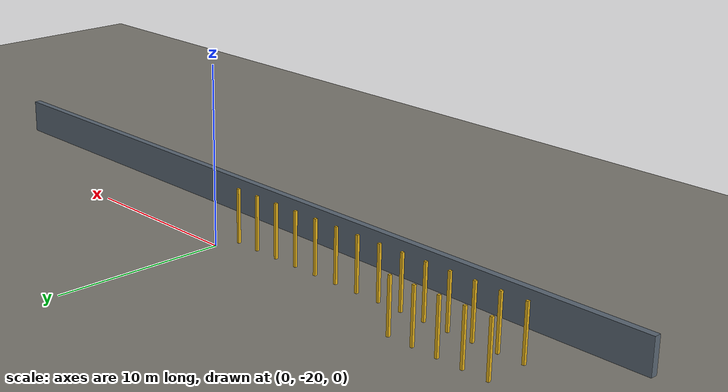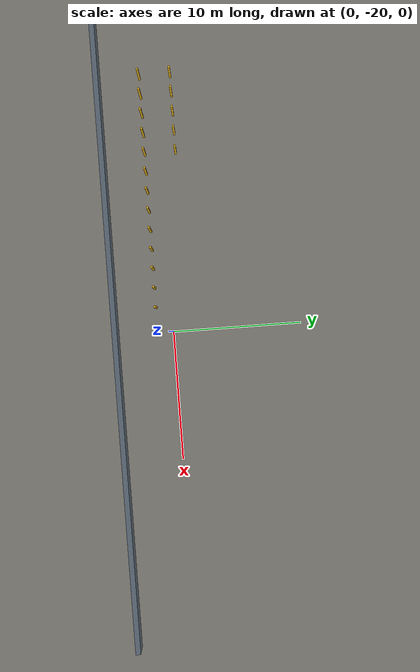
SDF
<sdf version="1.6">
 <world name="w4_structure_decks">
  <model name="ground_plane">
   <static>true</static>
   <link name="link">
    <collision name="collision">
     <geometry><plane><normal>0 0 1</normal><size>300.0 300.0</size></plane></geometry>
    </collision>
    <visual name="visual">
     <geometry><plane><normal>0 0 1</normal><size>300.0 300.0</size></plane></geometry>
     <material>
      <ambient>0.48 0.47 0.44 1</ambient>
      <diffuse>0.48 0.47 0.44 1</diffuse>
      <specular>0.05 0.05 0.05 1</specular>
     </material>
    </visual>
   </link>
  </model>
  <model name="fence_S0">
   <static>true</static>
   <pose>0.0000 -24.5000 1.0000 0 0 0.00000</pose>
   <link name="link">
    <collision name="c"><geometry><box><size>49.0000 0.4000 2.0000</size></box></geometry></collision>
    <visual name="v">
     <geometry><box><size>49.0000 0.4000 2.0000</size></box></geometry>
     <material>
      <ambient>0.350 0.400 0.450 1</ambient>
      <diffuse>0.350 0.400 0.450 1</diffuse>
      <specular>0.1 0.1 0.1 1</specular>
     </material>
    </visual>
   </link>
  </model>
  <model name="post_0_0">
   <static>true</static>
   <pose>-20.0000 -18.8000 1.5500 0 0 0.00000</pose>
   <link name="link">
    <collision name="c"><geometry><box><size>0.1500 0.1500 3.1000</size></box></geometry></collision>
    <visual name="v">
     <geometry><box><size>0.1500 0.1500 3.1000</size></box></geometry>
     <material>
      <ambient>0.900 0.700 0.100 1</ambient>
      <diffuse>0.900 0.700 0.100 1</diffuse>
      <specular>0.1 0.1 0.1 1</specular>
     </material>
    </visual>
   </link>
  </model>
  <model name="post_0_1">
   <static>true</static>
   <pose>-20.0000 -21.2000 1.5500 0 0 0.00000</pose>
   <link name="link">
    <collision name="c"><geometry><box><size>0.1500 0.1500 3.1000</size></box></geometry></collision>
    <visual name="v">
     <geometry><box><size>0.1500 0.1500 3.1000</size></box></geometry>
     <material>
      <ambient>0.900 0.700 0.100 1</ambient>
      <diffuse>0.900 0.700 0.100 1</diffuse>
      <specular>0.1 0.1 0.1 1</specular>
     </material>
    </visual>
   </link>
  </model>
  <model name="post_1_0">
   <static>true</static>
   <pose>-18.5000 -18.8000 1.5500 0 0 0.00000</pose>
   <link name="link">
    <collision name="c"><geometry><box><size>0.1500 0.1500 3.1000</size></box></geometry></collision>
    <visual name="v">
     <geometry><box><size>0.1500 0.1500 3.1000</size></box></geometry>
     <material>
      <ambient>0.900 0.700 0.100 1</ambient>
      <diffuse>0.900 0.700 0.100 1</diffuse>
      <specular>0.1 0.1 0.1 1</specular>
     </material>
    </visual>
   </link>
  </model>
  <model name="post_1_1">
   <static>true</static>
   <pose>-18.5000 -21.2000 1.5500 0 0 0.00000</pose>
   <link name="link">
    <collision name="c"><geometry><box><size>0.1500 0.1500 3.1000</size></box></geometry></collision>
    <visual name="v">
     <geometry><box><size>0.1500 0.1500 3.1000</size></box></geometry>
     <material>
      <ambient>0.900 0.700 0.100 1</ambient>
      <diffuse>0.900 0.700 0.100 1</diffuse>
      <specular>0.1 0.1 0.1 1</specular>
     </material>
    </visual>
   </link>
  </model>
  <model name="post_2_0">
   <static>true</static>
   <pose>-17.0000 -18.8000 1.5500 0 0 0.00000</pose>
   <link name="link">
    <collision name="c"><geometry><box><size>0.1500 0.1500 3.1000</size></box></geometry></collision>
    <visual name="v">
     <geometry><box><size>0.1500 0.1500 3.1000</size></box></geometry>
     <material>
      <ambient>0.900 0.700 0.100 1</ambient>
      <diffuse>0.900 0.700 0.100 1</diffuse>
      <specular>0.1 0.1 0.1 1</specular>
     </material>
    </visual>
   </link>
  </model>
  <model name="post_2_1">
   <static>true</static>
   <pose>-17.0000 -21.2000 1.5500 0 0 0.00000</pose>
   <link name="link">
    <collision name="c"><geometry><box><size>0.1500 0.1500 3.1000</size></box></geometry></collision>
    <visual name="v">
     <geometry><box><size>0.1500 0.1500 3.1000</size></box></geometry>
     <material>
      <ambient>0.900 0.700 0.100 1</ambient>
      <diffuse>0.900 0.700 0.100 1</diffuse>
      <specular>0.1 0.1 0.1 1</specular>
     </material>
    </visual>
   </link>
  </model>
  <model name="post_3_0">
   <static>true</static>
   <pose>-15.5000 -18.8000 1.5500 0 0 0.00000</pose>
   <link name="link">
    <collision name="c"><geometry><box><size>0.1500 0.1500 3.1000</size></box></geometry></collision>
    <visual name="v">
     <geometry><box><size>0.1500 0.1500 3.1000</size></box></geometry>
     <material>
      <ambient>0.900 0.700 0.100 1</ambient>
      <diffuse>0.900 0.700 0.100 1</diffuse>
      <specular>0.1 0.1 0.1 1</specular>
     </material>
    </visual>
   </link>
  </model>
  <model name="post_3_1">
   <static>true</static>
   <pose>-15.5000 -21.2000 1.5500 0 0 0.00000</pose>
   <link name="link">
    <collision name="c"><geometry><box><size>0.1500 0.1500 3.1000</size></box></geometry></collision>
    <visual name="v">
     <geometry><box><size>0.1500 0.1500 3.1000</size></box></geometry>
     <material>
      <ambient>0.900 0.700 0.100 1</ambient>
      <diffuse>0.900 0.700 0.100 1</diffuse>
      <specular>0.1 0.1 0.1 1</specular>
     </material>
    </visual>
   </link>
  </model>
  <model name="post_4_0">
   <static>true</static>
   <pose>-14.0000 -18.8000 1.5500 0 0 0.00000</pose>
   <link name="link">
    <collision name="c"><geometry><box><size>0.1500 0.1500 3.1000</size></box></geometry></collision>
    <visual name="v">
     <geometry><box><size>0.1500 0.1500 3.1000</size></box></geometry>
     <material>
      <ambient>0.900 0.700 0.100 1</ambient>
      <diffuse>0.900 0.700 0.100 1</diffuse>
      <specular>0.1 0.1 0.1 1</specular>
     </material>
    </visual>
   </link>
  </model>
  <model name="post_4_1">
   <static>true</static>
   <pose>-14.0000 -21.2000 1.5500 0 0 0.00000</pose>
   <link name="link">
    <collision name="c"><geometry><box><size>0.1500 0.1500 3.1000</size></box></geometry></collision>
    <visual name="v">
     <geometry><box><size>0.1500 0.1500 3.1000</size></box></geometry>
     <material>
      <ambient>0.900 0.700 0.100 1</ambient>
      <diffuse>0.900 0.700 0.100 1</diffuse>
      <specular>0.1 0.1 0.1 1</specular>
     </material>
    </visual>
   </link>
  </model>
  <model name="post_5_1">
   <static>true</static>
   <pose>-12.5000 -21.2000 1.5500 0 0 0.00000</pose>
   <link name="link">
    <collision name="c"><geometry><box><size>0.1500 0.1500 3.1000</size></box></geometry></collision>
    <visual name="v">
     <geometry><box><size>0.1500 0.1500 3.1000</size></box></geometry>
     <material>
      <ambient>0.900 0.700 0.100 1</ambient>
      <diffuse>0.900 0.700 0.100 1</diffuse>
      <specular>0.1 0.1 0.1 1</specular>
     </material>
    </visual>
   </link>
  </model>
  <model name="post_6_1">
   <static>true</static>
   <pose>-11.0000 -21.2000 1.5500 0 0 0.00000</pose>
   <link name="link">
    <collision name="c"><geometry><box><size>0.1500 0.1500 3.1000</size></box></geometry></collision>
    <visual name="v">
     <geometry><box><size>0.1500 0.1500 3.1000</size></box></geometry>
     <material>
      <ambient>0.900 0.700 0.100 1</ambient>
      <diffuse>0.900 0.700 0.100 1</diffuse>
      <specular>0.1 0.1 0.1 1</specular>
     </material>
    </visual>
   </link>
  </model>
  <model name="post_7_1">
   <static>true</static>
   <pose>-9.5000 -21.2000 1.5500 0 0 0.00000</pose>
   <link name="link">
    <collision name="c"><geometry><box><size>0.1500 0.1500 3.1000</size></box></geometry></collision>
    <visual name="v">
     <geometry><box><size>0.1500 0.1500 3.1000</size></box></geometry>
     <material>
      <ambient>0.900 0.700 0.100 1</ambient>
      <diffuse>0.900 0.700 0.100 1</diffuse>
      <specular>0.1 0.1 0.1 1</specular>
     </material>
    </visual>
   </link>
  </model>
  <model name="post_8_1">
   <static>true</static>
   <pose>-8.0000 -21.2000 1.5500 0 0 0.00000</pose>
   <link name="link">
    <collision name="c"><geometry><box><size>0.1500 0.1500 3.1000</size></box></geometry></collision>
    <visual name="v">
     <geometry><box><size>0.1500 0.1500 3.1000</size></box></geometry>
     <material>
      <ambient>0.900 0.700 0.100 1</ambient>
      <diffuse>0.900 0.700 0.100 1</diffuse>
      <specular>0.1 0.1 0.1 1</specular>
     </material>
    </visual>
   </link>
  </model>
  <model name="post_9_1">
   <static>true</static>
   <pose>-6.5000 -21.2000 1.5500 0 0 0.00000</pose>
   <link name="link">
    <collision name="c"><geometry><box><size>0.1500 0.1500 3.1000</size></box></geometry></collision>
    <visual name="v">
     <geometry><box><size>0.1500 0.1500 3.1000</size></box></geometry>
     <material>
      <ambient>0.900 0.700 0.100 1</ambient>
      <diffuse>0.900 0.700 0.100 1</diffuse>
      <specular>0.1 0.1 0.1 1</specular>
     </material>
    </visual>
   </link>
  </model>
  <model name="post_10_1">
   <static>true</static>
   <pose>-5.0000 -21.2000 1.5500 0 0 0.00000</pose>
   <link name="link">
    <collision name="c"><geometry><box><size>0.1500 0.1500 3.1000</size></box></geometry></collision>
    <visual name="v">
     <geometry><box><size>0.1500 0.1500 3.1000</size></box></geometry>
     <material>
      <ambient>0.900 0.700 0.100 1</ambient>
      <diffuse>0.900 0.700 0.100 1</diffuse>
      <specular>0.1 0.1 0.1 1</specular>
     </material>
    </visual>
   </link>
  </model>
  <model name="post_11_1">
   <static>true</static>
   <pose>-3.5000 -21.2000 1.5500 0 0 0.00000</pose>
   <link name="link">
    <collision name="c"><geometry><box><size>0.1500 0.1500 3.1000</size></box></geometry></collision>
    <visual name="v">
     <geometry><box><size>0.1500 0.1500 3.1000</size></box></geometry>
     <material>
      <ambient>0.900 0.700 0.100 1</ambient>
      <diffuse>0.900 0.700 0.100 1</diffuse>
      <specular>0.1 0.1 0.1 1</specular>
     </material>
    </visual>
   </link>
  </model>
  <model name="post_12_1">
   <static>true</static>
   <pose>-2.0000 -21.2000 1.5500 0 0 0.00000</pose>
   <link name="link">
    <collision name="c"><geometry><box><size>0.1500 0.1500 3.1000</size></box></geometry></collision>
    <visual name="v">
     <geometry><box><size>0.1500 0.1500 3.1000</size></box></geometry>
     <material>
      <ambient>0.900 0.700 0.100 1</ambient>
      <diffuse>0.900 0.700 0.100 1</diffuse>
      <specular>0.1 0.1 0.1 1</specular>
     </material>
    </visual>
   </link>
  </model>
  <model name="post_13_1">
   <static>true</static>
   <pose>-0.5000 -21.2000 1.5500 0 0 0.00000</pose>
   <link name="link">
    <collision name="c"><geometry><box><size>0.1500 0.1500 3.1000</size></box></geometry></collision>
    <visual name="v">
     <geometry><box><size>0.1500 0.1500 3.1000</size></box></geometry>
     <material>
      <ambient>0.900 0.700 0.100 1</ambient>
      <diffuse>0.900 0.700 0.100 1</diffuse>
      <specular>0.1 0.1 0.1 1</specular>
     </material>
    </visual>
   </link>
  </model>
 </world>
</sdf>
